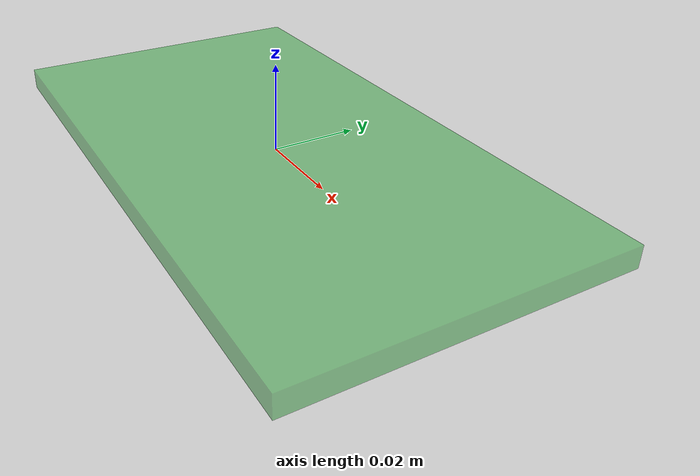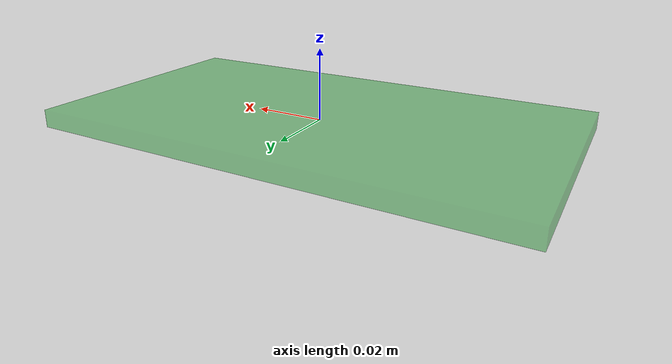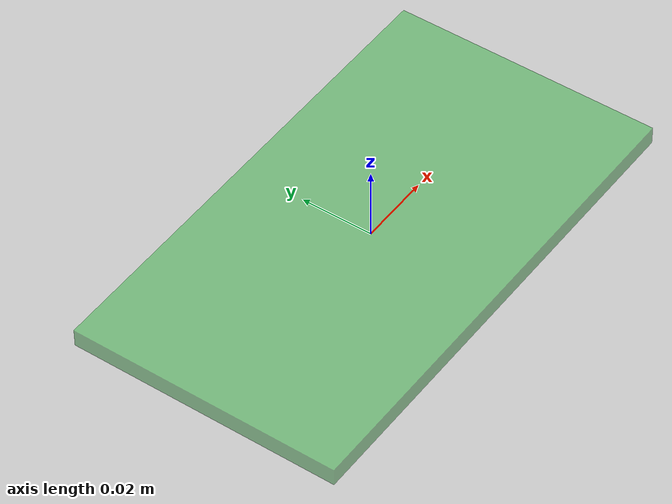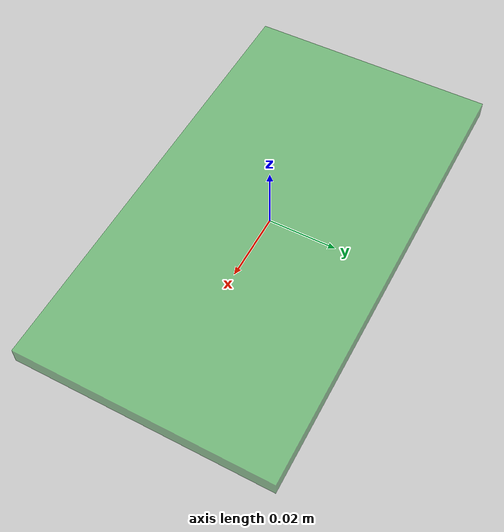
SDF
<?xml version="1.0" ?>
<sdf version='1.4'>
  <model name="example_region3">
      <static>1</static>
      <link name='link'>
        <visual name='visual'>
          <geometry>
            <box>
              <size>0.134 0.074 0.005</size>
            </box>
          </geometry>
          <material>
            <script>
              <uri>file://media/materials/scripts/gazebo.material</uri>
              <name>Gazebo/Green</name>
            </script>
          </material>
          <transparency>0.5</transparency>
        </visual>
        <self_collide>0</self_collide>
        <kinematic>0</kinematic>
        <gravity>0</gravity>
      </link>
  </model>
</sdf>
